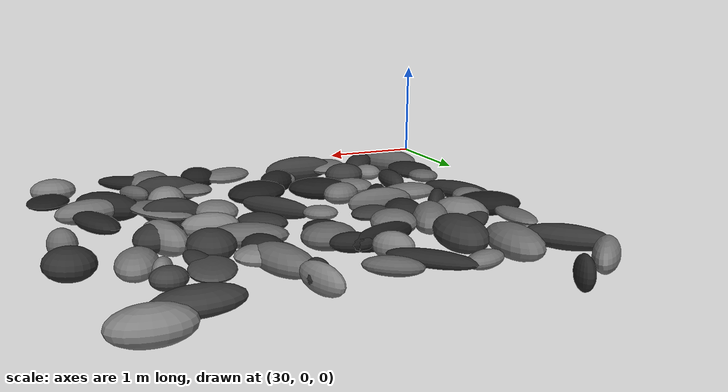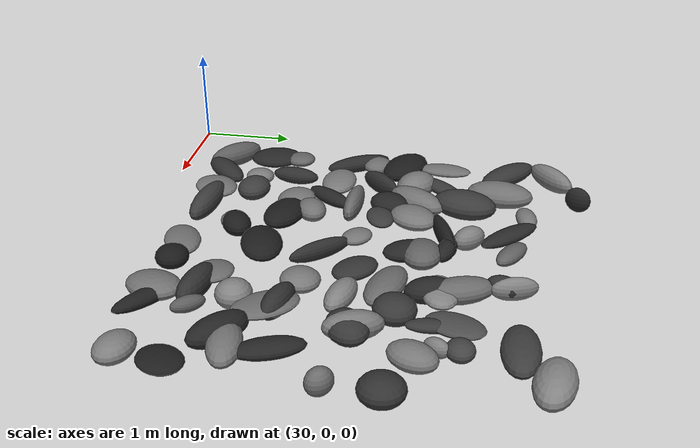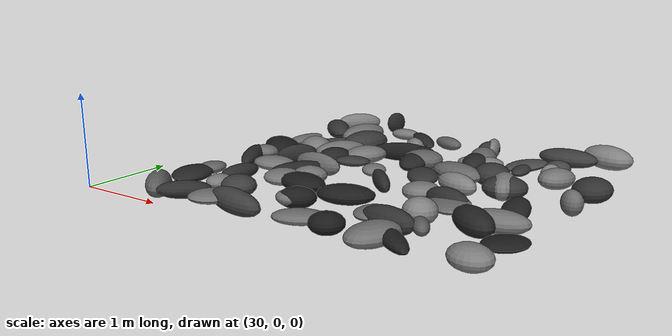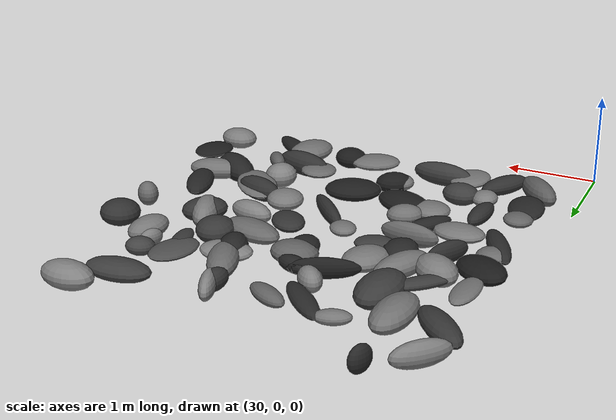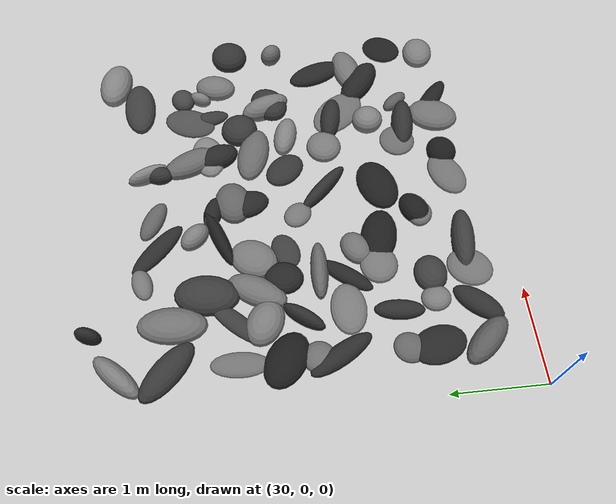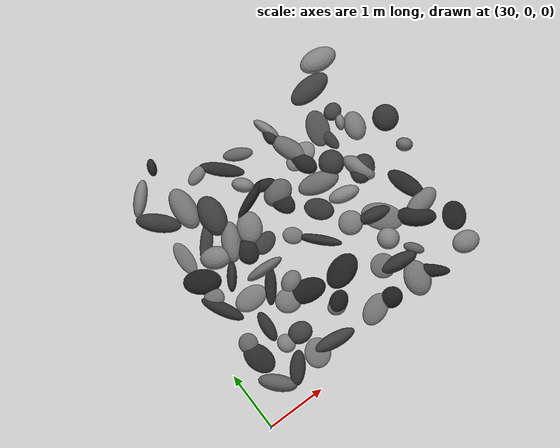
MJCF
<mujoco model="random_box_terrain">
    <compiler angle="degree" coordinate="local"/>
    <option timestep="0.01" gravity="0 0 -9.81" integrator="RK4"/>

    <worldbody>
        <body name="terrain" pos="30.5 0.5 0.0">
<geom type="ellipsoid" pos="0.0 0.0 0" size="0.31764491106551496 0.13795009798553662 0.12997831070907578" euler="0.2867544825592274 -0.02714158061388039 133.5577924507061" rgba="0.35559495459711665 0.35559495459711665 0.35559495459711665 1"/>
<geom type="ellipsoid" pos="0.0 0.49205126349144646 0" size="0.2905756756922705 0.2020409379080928 0.07385754481916024" euler="-1.0198482163039984 2.809406394997965 284.01193404049314" rgba="0.14958997672153507 0.14958997672153507 0.14958997672153507 1"/>
<geom type="ellipsoid" pos="0.0 0.7860990416124329 0" size="0.16875030247406206 0.15670052606175705 0.066881955885777" euler="1.9188939101651208 -2.870550078180008 247.6512737045339" rgba="0.3844381184969806 0.3844381184969806 0.3844381184969806 1"/>
<geom type="ellipsoid" pos="0.0 1.4742758915344163 0" size="0.37320695956523814 0.1117433192357942 0.08946983643883949" euler="2.1031275772854006 -2.2560603392689886 298.99939403389465" rgba="0.16627330854673122 0.16627330854673122 0.16627330854673122 1"/>
<geom type="ellipsoid" pos="0.0 1.7024409358298909 0" size="0.16716377886450703 0.1615989815525776 0.07692118160716883" euler="-2.073438575329112 1.9335246158671167 312.2611915676381" rgba="0.4170847082567548 0.4170847082567548 0.4170847082567548 1"/>
<geom type="ellipsoid" pos="0.0 2.0210001029155436 0" size="0.31062492004699904 0.20843713191968982 0.10676251233997373" euler="-0.7553368045014333 2.907391900757718 147.73240770975832" rgba="0.10516054483496871 0.10516054483496871 0.10516054483496871 1"/>
<geom type="ellipsoid" pos="0.0 2.482604545572951 0" size="0.2968483912048161 0.13192608654371632 0.05141409599954" euler="-0.004812592312835484 0.6294880139680199 266.5774557976127" rgba="0.43365883058996424 0.43365883058996424 0.43365883058996424 1"/>
<geom type="ellipsoid" pos="0.0 3.1997151567152926 0" size="0.37104923857495953 0.15024738916708097 0.10907852619986672" euler="2.6896650166304 -2.761470489827249 315.7794252503222" rgba="0.20622640368750728 0.20622640368750728 0.20622640368750728 1"/>
<geom type="ellipsoid" pos="0.0 3.691142025614244 0" size="0.309912748264683 0.1087826005116614 0.13356242870249665" euler="2.3200177806334494 2.44372573002442 45.557193724473834" rgba="0.4781609777635657 0.4781609777635657 0.4781609777635657 1"/>
<geom type="ellipsoid" pos="0.39755835027944963 0.0 0" size="0.29003442793295586 0.128608727193087 0.09661543377048389" euler="-2.7955620407464092 1.325350600732948 49.28715075089152" rgba="0.180068725915092 0.180068725915092 0.180068725915092 1"/>
<geom type="ellipsoid" pos="0.49043020546603083 0.4233300320774867 0" size="0.1572610375162525 0.14318656688936118 0.07988451339518016" euler="-0.7572377018377914 1.0465112313912392 95.49005714482863" rgba="0.4737843183743693 0.4737843183743693 0.4737843183743693 1"/>
<geom type="ellipsoid" pos="0.40543229183066565 0.8207928094536138 0" size="0.2644492525977088 0.10610244814871087 0.09076002822778496" euler="-0.1694319429834774 1.4319981203598022 263.73210305008735" rgba="0.17778425700682418 0.17778425700682418 0.17778425700682418 1"/>
<geom type="ellipsoid" pos="0.4680121253974415 1.3376100004360072 0" size="0.279019036312654 0.18833890587813995 0.0765059421293769" euler="0.27431030777062126 -0.3455001502799937 179.4304119763334" rgba="0.4603656262402076 0.4603656262402076 0.4603656262402076 1"/>
<geom type="ellipsoid" pos="0.4292503530443819 1.8046616437004013 0" size="0.2492032892603118 0.0814912323478013 0.12273935328487973" euler="0.5125939156856871 1.5718963219025683 234.29382484000902" rgba="0.17351533672234232 0.17351533672234232 0.17351533672234232 1"/>
<geom type="ellipsoid" pos="0.40277690117319986 2.2026611756042107 0" size="0.2530493880686748 0.19005732454696742 0.1406949946045129" euler="-2.16476453740193 -2.926545558035425 329.33618192166756" rgba="0.46789506321759167 0.46789506321759167 0.46789506321759167 1"/>
<geom type="ellipsoid" pos="0.43297469054122995 2.4914474032820655 0" size="0.34419884702459147 0.10408462350069837 0.059421449255734206" euler="2.834587453145658 -0.5448237283247082 227.82847078700644" rgba="0.22744675162379424 0.22744675162379424 0.22744675162379424 1"/>
<geom type="ellipsoid" pos="0.46955631345094573 3.1389075213267636 0" size="0.3627928835024992 0.19642222120646768 0.1322613846446331" euler="-0.3589544588088911 2.6599556604779107 84.88490756289981" rgba="0.43394864803874544 0.43394864803874544 0.43394864803874544 1"/>
<geom type="ellipsoid" pos="0.44819635934831725 3.984694489024467 0" size="0.14367068540012878 0.0765591350803046 0.14434318735443147" euler="-0.08138848035329849 0.4745574011106264 68.87004812115488" rgba="0.14889073156906918 0.14889073156906918 0.14889073156906918 1"/>
<geom type="ellipsoid" pos="0.80117100098134 0.0 0" size="0.2468147466190476 0.21272441550293208 0.06252976864137268" euler="-1.7051222597701905 1.369770048721315 239.97428784884346" rgba="0.43798173604323165 0.43798173604323165 0.43798173604323165 1"/>
<geom type="ellipsoid" pos="0.7690158548763861 0.4275841398525256 0" size="0.20551953977109802 0.1784902945876529 0.11624794183869741" euler="2.2804943878321833 -0.19731157109237163 357.30378527808466" rgba="0.23445622478369132 0.23445622478369132 0.23445622478369132 1"/>
<geom type="ellipsoid" pos="0.9285728991447642 0.9506246885367851 0" size="0.2180700061529264 0.20335936187618833 0.08061540133073103" euler="2.1344812327580236 0.5861565473447241 348.5290137234945" rgba="0.4530393032685177 0.4530393032685177 0.4530393032685177 1"/>
<geom type="ellipsoid" pos="0.8371082438994117 1.3087494767955659 0" size="0.31018777890285576 0.09664822741804613 0.07667370147262004" euler="2.878342422951797 2.1455933109293337 234.7987444751143" rgba="0.1452885560468274 0.1452885560468274 0.1452885560468274 1"/>
<geom type="ellipsoid" pos="0.9220635999528918 1.5876297508071677 0" size="0.32625754261982687 0.09400419846134372 0.13539872859426771" euler="-1.973537187417364 0.1365198564684933 176.98338073531448" rgba="0.40294539883752434 0.40294539883752434 0.40294539883752434 1"/>
<geom type="ellipsoid" pos="0.8732167829288339 1.9685816423327211 0" size="0.17779550444884118 0.21091869391039958 0.10926841216874399" euler="-1.865440969586551 -0.8324468882669755 350.1013885881598" rgba="0.14535930259668792 0.14535930259668792 0.14535930259668792 1"/>
<geom type="ellipsoid" pos="0.7544123001683938 2.255220250594252 0" size="0.3343382817949427 0.16044298474319432 0.12086522514829824" euler="-0.18950293879212765 2.809542285232996 240.7942014273818" rgba="0.440493848348568 0.440493848348568 0.440493848348568 1"/>
<geom type="ellipsoid" pos="0.7601905299831346 2.7761676519151637 0" size="0.3456383609971921 0.21973236718597966 0.1443712912744389" euler="-1.526335541209426 -0.5939800811433065 81.09906567341443" rgba="0.22355773655096348 0.22355773655096348 0.22355773655096348 1"/>
<geom type="ellipsoid" pos="0.952730126900628 3.4450738370432785 0" size="0.18801125212914413 0.1063344058630501 0.07129836391414789" euler="0.9506502873365106 2.4002882481833385 15.303432356520279" rgba="0.4521008970432605 0.4521008970432605 0.4521008970432605 1"/>
<geom type="ellipsoid" pos="1.131127471670737 0.0 0" size="0.366860870391424 0.12603103062733464 0.1330811883216424" euler="-1.1882617726338678 2.5068509190971744 172.0962684838066" rgba="0.23192896112126415 0.23192896112126415 0.23192896112126415 1"/>
<geom type="ellipsoid" pos="1.4834561765204164 0.40182989451940837 0" size="0.13077176481471758 0.1500603070654728 0.07739958377045653" euler="-2.8653253306624444 1.323991521249579 247.87688163064388" rgba="0.4350507636307206 0.4350507636307206 0.4350507636307206 1"/>
<geom type="ellipsoid" pos="1.2545630280629698 0.9009794729061192 0" size="0.32114163311745414 0.19737659597236912 0.10341328594807735" euler="-2.6899297119495356 -1.3732585754924032 165.29412293369572" rgba="0.10957496404628282 0.10957496404628282 0.10957496404628282 1"/>
<geom type="ellipsoid" pos="1.141332369701039 1.1665285080570336 0" size="0.197422317558657 0.15252884263981628 0.1043985334562535" euler="-0.679756731675675 -0.5228507203694912 28.044919125614406" rgba="0.43455406608607505 0.43455406608607505 0.43455406608607505 1"/>
<geom type="ellipsoid" pos="1.1823642402105947 1.9175483568289133 0" size="0.1444266945693314 0.20908003030167815 0.057049772770812884" euler="-1.8628943559200726 -0.192349896940319 109.77278530134387" rgba="0.23187387487706923 0.23187387487706923 0.23187387487706923 1"/>
<geom type="ellipsoid" pos="1.1272170030084308 2.2638667000992196 0" size="0.2647395710966737 0.20904599199670354 0.1031794434828459" euler="-1.121692181946284 -1.242755998818462 59.87689978584709" rgba="0.45772221128653745 0.45772221128653745 0.45772221128653745 1"/>
<geom type="ellipsoid" pos="1.4204488736356748 2.622566678242427 0" size="0.37391488400795303 0.08105794098436248 0.11376637835916088" euler="0.44615165361050124 -0.04644993223725358 21.524288068439542" rgba="0.116593359753834 0.116593359753834 0.116593359753834 1"/>
<geom type="ellipsoid" pos="1.4514683719412425 2.8803103589166974 0" size="0.181328867262231 0.11830548313530415 0.12321452520601021" euler="0.5840746792454956 0.18783386703519822 312.6221344745623" rgba="0.48455511960801756 0.48455511960801756 0.48455511960801756 1"/>
<geom type="ellipsoid" pos="1.3301022396662074 3.283462587619053 0" size="0.3722944348325325 0.11180310805424312 0.06807809303278167" euler="-2.603327519274545 1.9415410448936479 135.41317034235254" rgba="0.16063371030171716 0.16063371030171716 0.16063371030171716 1"/>
<geom type="ellipsoid" pos="1.9648599240311804 0.0 0" size="0.2810940582016104 0.185421788998832 0.06907426613943392" euler="-1.7769368674235908 -0.7839481171370171 203.7212916970237" rgba="0.42962837279681076 0.42962837279681076 0.42962837279681076 1"/>
<geom type="ellipsoid" pos="1.5553426380603794 0.45214696118717473 0" size="0.14952920450945714 0.2048153954099171 0.11493532561769959" euler="-2.1949855070932447 -1.8006602298646646 300.300296553186" rgba="0.1095207056905748 0.1095207056905748 0.1095207056905748 1"/>
<geom type="ellipsoid" pos="1.8740126857550794 0.7561706901278811 0" size="0.12802138066145777 0.14156242075972478 0.08360039548726712" euler="-2.580732501703772 2.5861809156513047 139.05625406367193" rgba="0.41414168983938315 0.41414168983938315 0.41414168983938315 1"/>
<geom type="ellipsoid" pos="1.921181800166214 1.4249755702211442 0" size="0.35747912769495316 0.08228900281541628 0.10104681293418351" euler="-1.6829773486282629 -1.331582644149607 133.66469342545213" rgba="0.17958775541857266 0.17958775541857266 0.17958775541857266 1"/>
<geom type="ellipsoid" pos="1.6091189219873407 1.7442734176293366 0" size="0.13770652794632166 0.16682100179423598 0.06310874786281168" euler="1.3474924490294615 1.2277624572294359 43.30475727484483" rgba="0.44545978268592534 0.44545978268592534 0.44545978268592534 1"/>
<geom type="ellipsoid" pos="1.7969078769395783 2.3003418505141564 0" size="0.25758129484097425 0.1645136858231075 0.09014317073949715" euler="2.6779714969204917 2.0694064270893593 283.22447071006064" rgba="0.14753512881729167 0.14753512881729167 0.14753512881729167 1"/>
<geom type="ellipsoid" pos="1.8300506278862243 2.442389040520637 0" size="0.2509660331040276 0.20147471223426075 0.11824504980286998" euler="1.2438616281423842 -2.363277542930774 188.7762204160103" rgba="0.37464799062853904 0.37464799062853904 0.37464799062853904 1"/>
<geom type="ellipsoid" pos="1.7194309692799752 2.673398283161493 0" size="0.1989381869835546 0.09875936516133174 0.08646022294448769" euler="-1.034432491819856 0.3311728687957536 345.057069697014" rgba="0.13955107157543903 0.13955107157543903 0.13955107157543903 1"/>
<geom type="ellipsoid" pos="1.6858402383408588 3.3255057512925874 0" size="0.24410891726182668 0.10874413151895146 0.07781445043809077" euler="-0.2933518823942878 -1.9927046844531418 152.15667469974483" rgba="0.3743988353980531 0.3743988353980531 0.3743988353980531 1"/>
<geom type="ellipsoid" pos="2.28407642923362 0.0 0" size="0.1697850125877358 0.18354929259602482 0.11207489374077434" euler="-1.3749680629185337 -1.9552018875877886 96.89847999336573" rgba="0.10290672349143525 0.10290672349143525 0.10290672349143525 1"/>
<geom type="ellipsoid" pos="2.478533014039285 0.4864544920615646 0" size="0.20620639782729766 0.2025209430049007 0.05774280490399622" euler="1.6676410931776307 -0.7776406697616993 310.9496047096916" rgba="0.4107536373303108 0.4107536373303108 0.4107536373303108 1"/>
<geom type="ellipsoid" pos="1.8998736330076644 0.8143108577890597 0" size="0.3175621693201405 0.21543620442174363 0.10120626799378687" euler="-2.276003422821739 -0.5148652762505321 17.461577231286093" rgba="0.11500836727526141 0.11500836727526141 0.11500836727526141 1"/>
<geom type="ellipsoid" pos="2.4780616844536505 1.351544052617848 0" size="0.19907089654912874 0.2028635720116959 0.09797241674790177" euler="-1.6504870702917167 -1.6032489316317504 293.8101558961858" rgba="0.4622289650071997 0.4622289650071997 0.4622289650071997 1"/>
<geom type="ellipsoid" pos="2.2032267215216277 1.8333309286284434 0" size="0.2437887391033477 0.17426340469609752 0.07865557770471235" euler="1.9284900521890362 0.7270367708334446 310.37650720193426" rgba="0.1993121487973035 0.1993121487973035 0.1993121487973035 1"/>
<geom type="ellipsoid" pos="2.4488018852007234 2.1757734036662204 0" size="0.3455397858469327 0.17533986323080983 0.1068169740779776" euler="1.239468200740233 -0.8083298420392317 344.84933482240405" rgba="0.4018606744682419 0.4018606744682419 0.4018606744682419 1"/>
<geom type="ellipsoid" pos="2.4526942745713174 2.59016656939434 0" size="0.24715843221463024 0.15417102002762684 0.12263299631676289" euler="0.4563066987224502 0.9736535046872201 288.9184020327342" rgba="0.15048450778318695 0.15048450778318695 0.15048450778318695 1"/>
<geom type="ellipsoid" pos="2.407555262693084 2.882162666058593 0" size="0.34177428252711106 0.16147891018770816 0.12086236938749464" euler="-2.039092951081956 2.448940278932218 111.61457288137737" rgba="0.40666194705312586 0.40666194705312586 0.40666194705312586 1"/>
<geom type="ellipsoid" pos="2.2851680609830622 3.275616690415027 0" size="0.17344915116763424 0.1085196349349988 0.11328971149888033" euler="-2.6132125572436955 -0.09708633655092669 255.9964748287467" rgba="0.1997006522989548 0.1997006522989548 0.1997006522989548 1"/>
<geom type="ellipsoid" pos="2.801814886052018 0.0 0" size="0.2936052938061775 0.21555585758222723 0.10677732958275378" euler="1.477908448380119 -1.1324449937886027 253.52480322684602" rgba="0.43243875977210344 0.43243875977210344 0.43243875977210344 1"/>
<geom type="ellipsoid" pos="2.7047824361690695 0.38545666086547514 0" size="0.33077399118812334 0.12974708136376098 0.1397679410905086" euler="0.6982790900898137 -2.6785757051929604 351.4181048598115" rgba="0.1902250751903417 0.1902250751903417 0.1902250751903417 1"/>
<geom type="ellipsoid" pos="2.81259041341024 0.7883390655928746 0" size="0.1797623617021572 0.18167332515572918 0.13709634256865538" euler="-0.8097348747821149 2.369283387284808 204.11057160754936" rgba="0.4959908032872986 0.4959908032872986 0.4959908032872986 1"/>
<geom type="ellipsoid" pos="2.8619425147878736 1.2241499977815389 0" size="0.28039976860662746 0.12333696582897419 0.1322698027973242" euler="0.5031819509721185 -1.7180525100698056 346.4654039490189" rgba="0.18385972454257066 0.18385972454257066 0.18385972454257066 1"/>
<geom type="ellipsoid" pos="2.6669756595907113 1.78376115425317 0" size="0.25917484808256674 0.12977171669244356 0.11820707566441209" euler="0.8370774457025001 1.274747720626582 165.5209933951052" rgba="0.4964639474616729 0.4964639474616729 0.4964639474616729 1"/>
<geom type="ellipsoid" pos="2.8113246663669913 2.3155186967067136 0" size="0.21145917965544606 0.2101352858310885 0.1319240141010048" euler="-2.7935909049432652 -0.07787575443866679 258.56873607853925" rgba="0.2122379764153693 0.2122379764153693 0.2122379764153693 1"/>
<geom type="ellipsoid" pos="2.475227058863129 2.693660351303684 0" size="0.2788563971596756 0.18375465819820597 0.07932004172297258" euler="-2.8845451002681264 -1.5568394523595903 10.981207680784326" rgba="0.4990700498543885 0.4990700498543885 0.4990700498543885 1"/>
<geom type="ellipsoid" pos="2.9712151233401456 2.888291208556056 0" size="0.29921040539618826 0.18964724750563672 0.05452636191168132" euler="-0.32400041951603153 -2.701125476021225 249.49484573896618" rgba="0.29838648955061275 0.29838648955061275 0.29838648955061275 1"/>
<geom type="ellipsoid" pos="2.295126095263865 3.3846196095671752 0" size="0.23789674378182174 0.08467855048346808 0.12229314797275469" euler="-2.654314256891765 -2.376975031168504 109.13868421146093" rgba="0.4990991299102773 0.4990991299102773 0.4990991299102773 1"/>
<geom type="ellipsoid" pos="3.001289252789655 0.0 0" size="0.36858679142065504 0.10720884124926269 0.07556426700467933" euler="-2.059782905371455 1.7282255040752412 322.1101998380443" rgba="0.12320921150303438 0.12320921150303438 0.12320921150303438 1"/>
<geom type="ellipsoid" pos="3.0466373462607867 0.4176370395973652 0" size="0.1734676440421811 0.08491804918848131 0.07876054669156403" euler="-2.120637975574691 2.5606531956160365 127.8903563368391" rgba="0.35483663581131275 0.35483663581131275 0.35483663581131275 1"/>
<geom type="ellipsoid" pos="3.3777348840305326 0.8070574650309109 0" size="0.3331717592412283 0.16490978572940163 0.13363132685616938" euler="-2.6338361773020615 -0.38531354032026766 142.21042590926365" rgba="0.1413098729789414 0.1413098729789414 0.1413098729789414 1"/>
<geom type="ellipsoid" pos="2.9443177007517725 1.1267140334699137 0" size="0.34659040125722146 0.2185275030912443 0.059779393692349525" euler="-1.3313077572331018 -2.7428593939778763 309.7719662962138" rgba="0.42262736581342175 0.42262736581342175 0.42262736581342175 1"/>
<geom type="ellipsoid" pos="3.155122139974617 1.936952956689355 0" size="0.2486808042788518 0.1958555311264264 0.12345064203450773" euler="0.42913051271808733 2.4002687964144718 34.06478945555867" rgba="0.20701819801949026 0.20701819801949026 0.20701819801949026 1"/>
<geom type="ellipsoid" pos="3.1181984108186316 1.98528952596446 0" size="0.2922397037356053 0.1452676482473958 0.14248023884144967" euler="-1.3709610192843076 -1.2547810369545784 290.63789876476227" rgba="0.4652062883133675 0.4652062883133675 0.4652062883133675 1"/>
<geom type="ellipsoid" pos="3.321855538758992 2.9644707403502455 0" size="0.1534100238474511 0.1356443398737977 0.0916872193068956" euler="1.4054435941295296 -2.1264558058168914 19.8490788423874" rgba="0.2583967816845365 0.2583967816845365 0.2583967816845365 1"/>
<geom type="ellipsoid" pos="3.31971775156918 2.7576530190585213 0" size="0.1318385785424861 0.07820984966616781 0.09608983162099638" euler="1.444859356616842 -2.2800264303118816 245.22051317244615" rgba="0.48219109312301356 0.48219109312301356 0.48219109312301356 1"/>
<geom type="ellipsoid" pos="3.2450250318520295 3.4811768439010313 0" size="0.36013071534771207 0.1821610782669611 0.1072339375580922" euler="0.25880510019087133 0.3583185393886268 3.528625983535738" rgba="0.2335170943483219 0.2335170943483219 0.2335170943483219 1"/>
<geom type="ellipsoid" pos="3.7795719231426714 0.0 0" size="0.22455294536854703 0.18174627285623624 0.1143692828255172" euler="1.729484117906689 0.5018334816172265 166.88422714126403" rgba="0.4770967490896737 0.4770967490896737 0.4770967490896737 1"/>
<geom type="ellipsoid" pos="3.8804956242823447 0.4494462737064796 0" size="0.2366666347621997 0.19621270172316707 0.05656304089501109" euler="-0.8852143956659284 -0.15096998596633338 240.8224211417096" rgba="0.11610688560616676 0.11610688560616676 0.11610688560616676 1"/>
<geom type="ellipsoid" pos="3.577410315104936 0.9283539170212731 0" size="0.3161768725957348 0.16450069003929227 0.11194332538703759" euler="1.8323793214404178 0.8919185845392339 10.692688652447968" rgba="0.44235480146012685 0.44235480146012685 0.44235480146012685 1"/>
<geom type="ellipsoid" pos="3.5686411175001633 1.3231195886862406 0" size="0.3405383815256227 0.14697424215630983 0.0820121786761282" euler="2.0557869150108194 -2.084678524675958 289.41580407778326" rgba="0.14514246976943676 0.14514246976943676 0.14514246976943676 1"/>
<geom type="ellipsoid" pos="3.9317263398931592 1.8470002052618142 0" size="0.13689049626620872 0.11275026381269268 0.13554114253413582" euler="1.2466077126788289 1.3609344674290025 315.239904313983" rgba="0.4098843675311069 0.4098843675311069 0.4098843675311069 1"/>
<geom type="ellipsoid" pos="3.9477583544628296 2.3750796864476804 0" size="0.21927544184882106 0.21413634668377826 0.13451761709755272" euler="0.9716155005607723 -2.4017241052684337 56.706687569675466" rgba="0.19031952710892697 0.19031952710892697 0.19031952710892697 1"/>
<geom type="ellipsoid" pos="3.473543218792103 2.567246795278078 0" size="0.24275289388284255 0.17261274268209945 0.11414985787769444" euler="-2.2117398288616608 2.5973646616783093 252.13952167693404" rgba="0.45568883443067343 0.45568883443067343 0.45568883443067343 1"/>
<geom type="ellipsoid" pos="3.011461444922478 2.6654456028738456 0" size="0.23332160381709421 0.0995842061321608 0.05485667995110734" euler="-1.6153387061091058 -2.822914642962078 278.0425817352744" rgba="0.21507774967515664 0.21507774967515664 0.21507774967515664 1"/>
<geom type="ellipsoid" pos="3.6359423218988605 3.7760393552279554 0" size="0.31337856710083656 0.1896715650476766 0.1413640090108135" euler="1.5009715346014119 2.5409916015262093 171.71127187327582" rgba="0.4938698230531664 0.4938698230531664 0.4938698230531664 1"/>
        </body>
    </worldbody>

    <actuator>
        <!-- 在这里你可以定义一些控制器 -->
    </actuator>

</mujoco>
